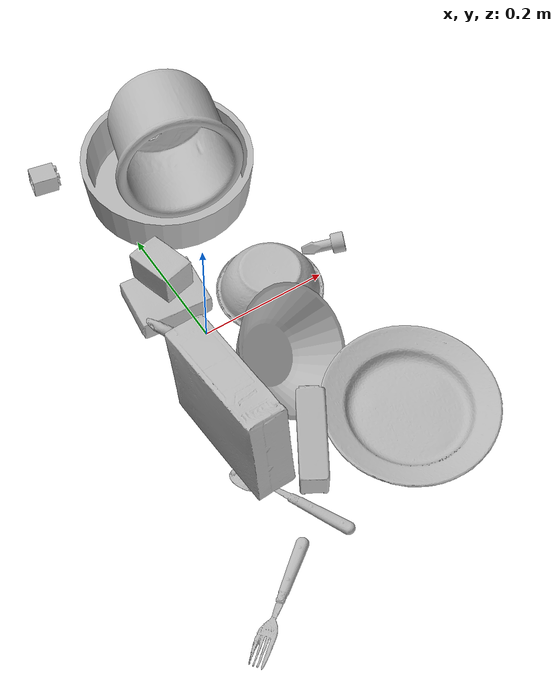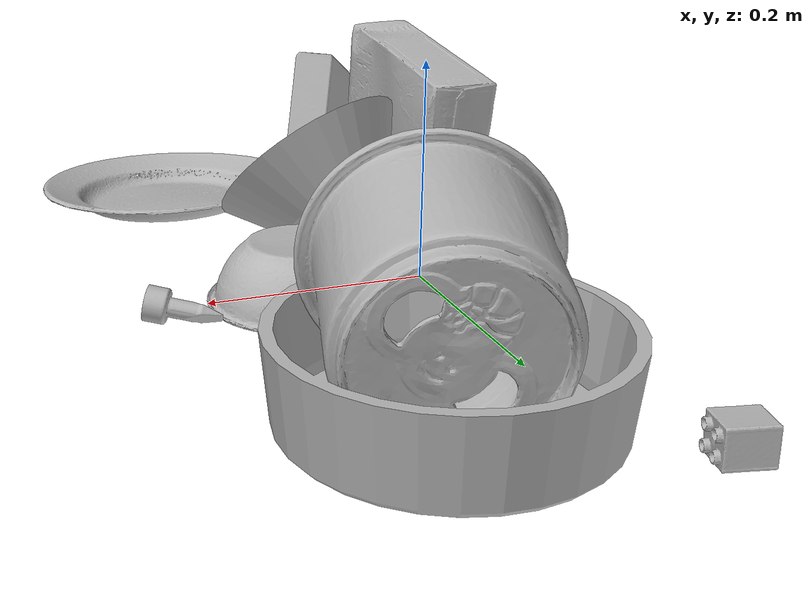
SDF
<sdf version="1.4">
  <world name="default">
    <light name="light1" type="point">
      <pose>0 0 1 0 0 0</pose>
      <diffuse>3 3 3 1</diffuse>
      <specular>3 3 3 1</specular>
    </light>
    <light name="light2" type="point">
      <pose>0 0.5 2 0 0 0</pose>
      <diffuse>1 1 1 1</diffuse>
      <specular>1 1 1 1</specular>
    </light>
    <light name="light3" type="point">
      <pose>0 0.5 2 0 0 0</pose>
      <diffuse>3 3 3 1</diffuse>
      <specular>3 3 3 1</specular>
    </light>
    <scene>
      <ambient>0.7 0.7 0.7</ambient>
    </scene>
    <model name="plate1">
      <link name="link_plate1">
        <collision name="default">
          <geometry>
            <mesh>
              <uri>model://pan_tefal/collision_meshes/collision.obj</uri>
              <scale>1.0 1.0 1.0</scale>
            </mesh>
          </geometry>
          <surface>
            <friction>
              <ode>
                <mu>0.5</mu>
                <mu2>0.5</mu2>
              </ode>
            </friction>
          <contact>
        <ode>
            <max_vel>0</max_vel>
            <min_depth>0.0001</min_depth>
            <kp>1e8</kp>
        </ode>
    </contact></surface>
        </collision>
        <visual name="default">
          <geometry>
            <mesh>
              <uri>model://pan_tefal/visual_meshes/visual.dae</uri>
              <scale>1.0 1.0 1.0</scale>
            </mesh>
          </geometry>
        </visual>
        <inertial>
          <mass>0.7050602436065674</mass>
          <pose>-0.00018002082651946694 3.279098018538207e-05 -0.008514933288097382 0.0008190340203057913 -0.0003301288692481796 -0.3318720847028622</pose>
          <inertia>
            <ixx>0.0048669963</ixx>
            <iyy>0.0048983735</iyy>
            <izz>0.008959204</izz>
            <ixy>0</ixy>
            <ixz>0</ixz>
            <iyz>0</iyz>
          </inertia>
        </inertial>
      </link>
      <pose>0.09546010196208954 0.2664937674999237 0.03805001080036163 5.532328078269189e-07 4.3541751470700805e-08 0.14674074907955206</pose>
    </model>
    <model name="plate2">
      <link name="link_plate2">
        <collision name="default">
          <geometry>
            <mesh>
              <uri>model://plate/collision_meshes/collision.obj</uri>
              <scale>1.0 1.0 1.0</scale>
            </mesh>
          </geometry>
          <surface>
            <friction>
              <ode>
                <mu>0.5</mu>
                <mu2>0.5</mu2>
              </ode>
            </friction>
          <contact>
        <ode>
            <max_vel>0</max_vel>
            <min_depth>0.0001</min_depth>
            <kp>1e8</kp>
        </ode>
    </contact></surface>
        </collision>
        <visual name="default">
          <geometry>
            <mesh>
              <uri>model://plate/visual_meshes/visual.dae</uri>
              <scale>1.0 1.0 1.0</scale>
            </mesh>
          </geometry>
        </visual>
        <inertial>
          <mass>0.2442774623632431</mass>
          <pose>-0.0006044568726792932 0.0002782584633678198 -0.0010561984963715076 0.0022187778178748897 -0.0032254919076997847 0.45261061169843664</pose>
          <inertia>
            <ixx>0.0011427345</ixx>
            <iyy>0.001131805</iyy>
            <izz>0.002235018</izz>
            <ixy>0</ixy>
            <ixz>0</ixz>
            <iyz>0</iyz>
          </inertia>
        </inertial>
      </link>
      <pose>0.17099669575691223 -0.2741580605506897 0.018683962523937225 -0.055264099445049966 -0.032150278747912424 2.666944582054992</pose>
    </model>
    <model name="bowl1">
      <link name="link_bowl1">
        <collision name="default">
          <geometry>
            <mesh>
              <uri>model://bowl_a/collision_meshes/collision.obj</uri>
              <scale>1.0 1.0 1.0</scale>
            </mesh>
          </geometry>
          <surface>
            <friction>
              <ode>
                <mu>0.5</mu>
                <mu2>0.5</mu2>
              </ode>
            </friction>
          <contact>
        <ode>
            <max_vel>0</max_vel>
            <min_depth>0.0001</min_depth>
            <kp>1e8</kp>
        </ode>
    </contact></surface>
        </collision>
        <visual name="default">
          <geometry>
            <mesh>
              <uri>model://bowl_a/visual_meshes/visual.dae</uri>
              <scale>1.0 1.0 1.0</scale>
            </mesh>
          </geometry>
        </visual>
        <inertial>
          <mass>0.4025156497955322</mass>
          <pose>0.00027867371682077646 4.731032458948903e-05 -0.0013765298062935472 -0.00098054011869292 -0.0010938175729232503 -0.19123339485915475</pose>
          <inertia>
            <ixx>0.0011459808</ixx>
            <iyy>0.0011530165</iyy>
            <izz>0.0020381706</izz>
            <ixy>0</ixy>
            <ixz>0</ixz>
            <iyz>0</iyz>
          </inertia>
        </inertial>
      </link>
      <pose>0.050290580838918686 -0.11978363990783691 0.06067845597863197 -0.060490987311300454 -0.7853404935523579 2.1624182362864333</pose>
    </model>
    <model name="bowl2">
      <link name="link_bowl2">
        <collision name="default">
          <geometry>
            <mesh>
              <uri>model://bowl/collision_meshes/collision.obj</uri>
              <scale>1.0 1.0 1.0</scale>
            </mesh>
          </geometry>
          <surface>
            <friction>
              <ode>
                <mu>0.5</mu>
                <mu2>0.5</mu2>
              </ode>
            </friction>
          <contact>
        <ode>
            <max_vel>0</max_vel>
            <min_depth>0.0001</min_depth>
            <kp>1e8</kp>
        </ode>
    </contact></surface>
        </collision>
        <visual name="default">
          <geometry>
            <mesh>
              <uri>model://bowl/visual_meshes/visual.dae</uri>
              <scale>1.0 1.0 1.0</scale>
            </mesh>
          </geometry>
        </visual>
        <inertial>
          <mass>0.04694162309169769</mass>
          <pose>0.00020445318659767509 -0.001030211104080081 -0.0008042642730288208 -0.01576400215318024 0.014546874726031786 0.7140460761636136</pose>
          <inertia>
            <ixx>0.0001078286</ixx>
            <iyy>0.000105419305</iyy>
            <izz>0.00018140484</izz>
            <ixy>0</ixy>
            <ixz>0</ixz>
            <iyz>0</iyz>
          </inertia>
        </inertial>
      </link>
      <pose>0.12152186036109924 0.01669551245868206 0.027247369289398193 -3.1327239252023054 0.0006754744522544184 0.032340837830588796</pose>
    </model>
    <model name="silverware1">
      <link name="link_silverware1">
        <collision name="default">
          <geometry>
            <mesh>
              <uri>model://spoon/collision_meshes/collision.obj</uri>
              <scale>1.0 1.0 1.0</scale>
            </mesh>
          </geometry>
          <surface>
            <friction>
              <ode>
                <mu>0.5</mu>
                <mu2>0.5</mu2>
              </ode>
            </friction>
          <contact>
        <ode>
            <max_vel>0</max_vel>
            <min_depth>0.0001</min_depth>
            <kp>1e8</kp>
        </ode>
    </contact></surface>
        </collision>
        <visual name="default">
          <geometry>
            <mesh>
              <uri>model://spoon/visual_meshes/visual.dae</uri>
              <scale>1.0 1.0 1.0</scale>
            </mesh>
          </geometry>
        </visual>
        <inertial>
          <mass>0.03710600733757019</mass>
          <pose>-0.005526318680495024 -0.0016034168656915426 -0.0007271650829352438 0.03521602429168162 -0.03906583039209626 0.006150612964611125</pose>
          <inertia>
            <ixx>2.0638956e-06</ixx>
            <iyy>0.00014118708</iyy>
            <izz>0.00014220492</izz>
            <ixy>0</ixy>
            <ixz>0</ixz>
            <iyz>0</iyz>
          </inertia>
        </inertial>
      </link>
      <pose>-0.04746950790286064 -0.3008335530757904 0.010066403076052666 3.0899154858055273 -0.06258267236730944 2.059521734589288</pose>
    </model>
    <model name="box1">
      <link name="link_box1">
        <collision name="default">
          <geometry>
            <mesh>
              <uri>model://cracker_box/collision_meshes/collision.obj</uri>
              <scale>1.0 1.0 1.0</scale>
            </mesh>
          </geometry>
          <surface>
            <friction>
              <ode>
                <mu>0.5</mu>
                <mu2>0.5</mu2>
              </ode>
            </friction>
          <contact>
        <ode>
            <max_vel>0</max_vel>
            <min_depth>0.0001</min_depth>
            <kp>1e8</kp>
        </ode>
    </contact></surface>
        </collision>
        <visual name="default">
          <geometry>
            <mesh>
              <uri>model://cracker_box/visual_meshes/visual.dae</uri>
              <scale>1.0 1.0 1.0</scale>
            </mesh>
          </geometry>
        </visual>
        <inertial>
          <mass>2.252173662185669</mass>
          <pose>0.0009464137838222086 0.0002543425071053207 -0.0017029535956680775 -0.000316207513865998 -0.011106489600465836 0.0025467954670329632</pose>
          <inertia>
            <ixx>0.0057285246</ixx>
            <iyy>0.00945892</iyy>
            <izz>0.013498746</izz>
            <ixy>0</ixy>
            <ixz>0</ixz>
            <iyz>0</iyz>
          </inertia>
        </inertial>
      </link>
      <pose>-0.06448300182819366 -0.17376761138439178 0.09324037283658981 1.547029968723059 0.12550143178527048 1.5998345817528954</pose>
    </model>
    <model name="box2">
      <link name="link_box2">
        <collision name="default">
          <geometry>
            <mesh>
              <uri>model://pudding_box/collision_meshes/collision.obj</uri>
              <scale>1.0 1.0 1.0</scale>
            </mesh>
          </geometry>
          <surface>
            <friction>
              <ode>
                <mu>0.5</mu>
                <mu2>0.5</mu2>
              </ode>
            </friction>
          <contact>
        <ode>
            <max_vel>0</max_vel>
            <min_depth>0.0001</min_depth>
            <kp>1e8</kp>
        </ode>
    </contact></surface>
        </collision>
        <visual name="default">
          <geometry>
            <mesh>
              <uri>model://pudding_box/visual_meshes/visual.dae</uri>
              <scale>1.0 1.0 1.0</scale>
            </mesh>
          </geometry>
        </visual>
        <inertial>
          <mass>0.38795164227485657</mass>
          <pose>0.0004894821904599667 0.0008067885646596551 -0.0005188827635720372 0.005213102258195884 -0.006603798723254801 0.020079825158131615</pose>
          <inertia>
            <ixx>0.00043855933</ixx>
            <iyy>0.00029506587</iyy>
            <izz>0.0006476475</izz>
            <ixy>0</ixy>
            <ixz>0</ixz>
            <iyz>0</iyz>
          </inertia>
        </inertial>
      </link>
      <pose>-0.022429486736655235 0.07685506343841553 0.019725799560546875 0.02234516654211678 -0.0113957176035735 -1.6889415915950985</pose>
    </model>
    <model name="cup1">
      <link name="link_cup1">
        <collision name="default">
          <geometry>
            <mesh>
              <uri>model://i_cups/collision_meshes/collision.obj</uri>
              <scale>2.0 2.0 2.0</scale>
            </mesh>
          </geometry>
          <surface>
            <friction>
              <ode>
                <mu>0.5</mu>
                <mu2>0.5</mu2>
              </ode>
            </friction>
          <contact>
        <ode>
            <max_vel>0</max_vel>
            <min_depth>0.0001</min_depth>
            <kp>1e8</kp>
        </ode>
    </contact></surface>
        </collision>
        <visual name="default">
          <geometry>
            <mesh>
              <uri>model://i_cups/visual_meshes/visual.dae</uri>
              <scale>2.0 2.0 2.0</scale>
            </mesh>
          </geometry>
        </visual>
        <inertial>
          <mass>0.8781275153160095</mass>
          <pose>0.00022480404004454613 0.0003359464171808213 -0.0017158013070002198 -0.028983801808433914 -0.03987279960401974 -0.34589629987983705</pose>
          <inertia>
            <ixx>0.004863122</ixx>
            <iyy>0.004905971</iyy>
            <izz>0.005435325</izz>
            <ixy>0</ixy>
            <ixz>0</ixz>
            <iyz>0</iyz>
          </inertia>
        </inertial>
      </link>
      <pose>0.10796836018562317 0.2788730561733246 0.09747462719678879 -1.4165086879955693 0.5648367691601976 2.935915790100763</pose>
    </model>
    <model name="silverware2">
      <link name="link_silverware2">
        <collision name="default">
          <geometry>
            <mesh>
              <uri>model://fork/collision_meshes/collision.obj</uri>
              <scale>1.0 1.0 1.0</scale>
            </mesh>
          </geometry>
          <surface>
            <friction>
              <ode>
                <mu>0.5</mu>
                <mu2>0.5</mu2>
              </ode>
            </friction>
          <contact>
        <ode>
            <max_vel>0</max_vel>
            <min_depth>0.0001</min_depth>
            <kp>1e8</kp>
        </ode>
    </contact></surface>
        </collision>
        <visual name="default">
          <geometry>
            <mesh>
              <uri>model://fork/visual_meshes/visual.dae</uri>
              <scale>1.0 1.0 1.0</scale>
            </mesh>
          </geometry>
        </visual>
        <inertial>
          <mass>0.027322283014655113</mass>
          <pose>-0.02957003377377987 0.0004658822435885668 0.0003218860656488687 -0.013551502868568713 -0.01097783467120204 0.01445389601768567</pose>
          <inertia>
            <ixx>9.578007e-07</ixx>
            <iyy>7.133063e-05</iyy>
            <izz>7.175903e-05</izz>
            <ixy>0</ixy>
            <ixz>0</ixz>
            <iyz>0</iyz>
          </inertia>
        </inertial>
      </link>
      <pose>-0.14493761956691742 -0.42229846119880676 0.007446615025401115 -3.06349613107129 0.002835914376244022 -2.485634642715646</pose>
    </model>
    <model name="silverware3">
      <link name="link_silverware3">
        <collision name="default">
          <geometry>
            <mesh>
              <uri>model://knife/collision_meshes/collision.obj</uri>
              <scale>1.0 1.0 1.0</scale>
            </mesh>
          </geometry>
          <surface>
            <friction>
              <ode>
                <mu>0.5</mu>
                <mu2>0.5</mu2>
              </ode>
            </friction>
          <contact>
        <ode>
            <max_vel>0</max_vel>
            <min_depth>0.0001</min_depth>
            <kp>1e8</kp>
        </ode>
    </contact></surface>
        </collision>
        <visual name="default">
          <geometry>
            <mesh>
              <uri>model://knife/visual_meshes/visual.dae</uri>
              <scale>1.0 1.0 1.0</scale>
            </mesh>
          </geometry>
        </visual>
        <inertial>
          <mass>0.036400385200977325</mass>
          <pose>-0.02378525584936142 0.0015275126788765192 5.0620175898075104e-05 0.07305876248658423 0.017248417790611748 -0.007409819472147862</pose>
          <inertia>
            <ixx>1.0331904e-06</ixx>
            <iyy>0.00013984439</iyy>
            <izz>0.00014017712</izz>
            <ixy>0</ixy>
            <ixz>0</ixz>
            <iyz>0</iyz>
          </inertia>
        </inertial>
      </link>
      <pose>-0.014645538292825222 -0.042191293090581894 0.022866668179631233 2.889208643728844 -0.15098600419564462 2.1909278989050165</pose>
    </model>
    <model name="toy1">
      <link name="link_toy1">
        <collision name="default">
          <geometry>
            <mesh>
              <uri>model://d_lego_duplo/collision_meshes/collision.obj</uri>
              <scale>1.0 1.0 1.0</scale>
            </mesh>
          </geometry>
          <surface>
            <friction>
              <ode>
                <mu>0.5</mu>
                <mu2>0.5</mu2>
              </ode>
            </friction>
          <contact>
        <ode>
            <max_vel>0</max_vel>
            <min_depth>0.0001</min_depth>
            <kp>1e8</kp>
        </ode>
    </contact></surface>
        </collision>
        <visual name="default">
          <geometry>
            <mesh>
              <uri>model://d_lego_duplo/visual_meshes/visual.dae</uri>
              <scale>1.0 1.0 1.0</scale>
            </mesh>
          </geometry>
        </visual>
        <inertial>
          <mass>0.060466669499874115</mass>
          <pose>0.002830563113093376 0.00016366162162739784 0.0008589806384406984 0.08010949306805684 -0.3835523000845375 0.0010296676643477064</pose>
          <inertia>
            <ixx>1.1705457e-05</ixx>
            <iyy>1.6613216e-05</iyy>
            <izz>1.6021117e-05</izz>
            <ixy>0</ixy>
            <ixz>0</ixz>
            <iyz>0</iyz>
          </inertia>
        </inertial>
      </link>
      <pose>-0.04946957901120186 -0.04551565647125244 0.021636106073856354 3.1413272174467997 -0.04103915585775152 -0.6808806499313594</pose>
    </model>
    <model name="toy2">
      <link name="link_toy2">
        <collision name="default">
          <geometry>
            <mesh>
              <uri>model://b_lego_duplo/collision_meshes/collision.obj</uri>
              <scale>1.0 1.0 1.0</scale>
            </mesh>
          </geometry>
          <surface>
            <friction>
              <ode>
                <mu>0.5</mu>
                <mu2>0.5</mu2>
              </ode>
            </friction>
          <contact>
        <ode>
            <max_vel>0</max_vel>
            <min_depth>0.0001</min_depth>
            <kp>1e8</kp>
        </ode>
    </contact></surface>
        </collision>
        <visual name="default">
          <geometry>
            <mesh>
              <uri>model://b_lego_duplo/visual_meshes/visual.dae</uri>
              <scale>1.0 1.0 1.0</scale>
            </mesh>
          </geometry>
        </visual>
        <inertial>
          <mass>0.030077241361141205</mass>
          <pose>-0.00011053079651901498 -9.15232340048533e-06 0.0019294286612421274 -0.037494862621914114 -0.026354003688684128 0.4518993950044185</pose>
          <inertia>
            <ixx>6.155532e-06</ixx>
            <iyy>6.196912e-06</iyy>
            <izz>5.4843786e-06</izz>
            <ixy>0</ixy>
            <ixz>0</ixz>
            <iyz>0</iyz>
          </inertia>
        </inertial>
      </link>
      <pose>-0.0638495609164238 0.3737044334411621 0.01612115651369095 1.5723689509782155 -0.012007630423678974 1.3673843458466737</pose>
    </model>
    <model name="toy3">
      <link name="link_toy3">
        <collision name="default">
          <geometry>
            <mesh>
              <uri>model://nine_hole_peg_test/collision_meshes/collision.obj</uri>
              <scale>1.0 1.0 1.0</scale>
            </mesh>
          </geometry>
          <surface>
            <friction>
              <ode>
                <mu>0.5</mu>
                <mu2>0.5</mu2>
              </ode>
            </friction>
          <contact>
        <ode>
            <max_vel>0</max_vel>
            <min_depth>0.0001</min_depth>
            <kp>1e8</kp>
        </ode>
    </contact></surface>
        </collision>
        <visual name="default">
          <geometry>
            <mesh>
              <uri>model://nine_hole_peg_test/visual_meshes/visual.dae</uri>
              <scale>1.0 1.0 1.0</scale>
            </mesh>
          </geometry>
        </visual>
        <inertial>
          <mass>0.9411391019821167</mass>
          <pose>-0.0046173869632184505 -0.009647615253925323 2.646069333422929e-05 -0.0014666795036135398 0.0007194176186147546 -0.6342417663820423</pose>
          <inertia>
            <ixx>0.0014716258</ixx>
            <iyy>0.0013740414</iyy>
            <izz>0.0025787223</izz>
            <ixy>0</ixy>
            <ixz>0</ixz>
            <iyz>0</iyz>
          </inertia>
        </inertial>
      </link>
      <pose>0.007114258594810963 -0.26602432131767273 0.08002062141895294 1.4784687348422394 1.2024912426292702 0.9460768520764007</pose>
    </model>
    <model name="toy4">
      <link name="link_toy4">
        <collision name="default">
          <geometry>
            <mesh>
              <uri>model://foam_brick/collision_meshes/collision.obj</uri>
              <scale>1.0 1.0 1.0</scale>
            </mesh>
          </geometry>
          <surface>
            <friction>
              <ode>
                <mu>0.5</mu>
                <mu2>0.5</mu2>
              </ode>
            </friction>
          <contact>
        <ode>
            <max_vel>0</max_vel>
            <min_depth>0.0001</min_depth>
            <kp>1e8</kp>
        </ode>
    </contact></surface>
        </collision>
        <visual name="default">
          <geometry>
            <mesh>
              <uri>model://foam_brick/visual_meshes/visual.dae</uri>
              <scale>1.0 1.0 1.0</scale>
            </mesh>
          </geometry>
        </visual>
        <inertial>
          <mass>0.1527709662914276</mass>
          <pose>-0.00025224717683158815 0.0003458428254816681 -0.00025321016437374055 -0.29402015796081304 0.017274438268763303 -0.0007449889855682301</pose>
          <inertia>
            <ixx>6.673321e-05</ixx>
            <iyy>0.00010654301</iyy>
            <izz>0.00010789704</izz>
            <ixy>0</ixy>
            <ixz>0</ixz>
            <iyz>0</iyz>
          </inertia>
        </inertial>
      </link>
      <pose>-0.01624470017850399 0.09614456444978714 0.06363047659397125 1.5662673831704297 0.04734869821083261 1.8241760700015643</pose>
    </model>
    <model name="toy5">
      <link name="link_toy5">
        <collision name="default">
          <geometry>
            <mesh>
              <uri>model://e_toy_airplane/collision_meshes/collision.obj</uri>
              <scale>1.0 1.0 1.0</scale>
            </mesh>
          </geometry>
          <surface>
            <friction>
              <ode>
                <mu>0.5</mu>
                <mu2>0.5</mu2>
              </ode>
            </friction>
          <contact>
        <ode>
            <max_vel>0</max_vel>
            <min_depth>0.0001</min_depth>
            <kp>1e8</kp>
        </ode>
    </contact></surface>
        </collision>
        <visual name="default">
          <geometry>
            <mesh>
              <uri>model://e_toy_airplane/visual_meshes/visual.dae</uri>
              <scale>1.0 1.0 1.0</scale>
            </mesh>
          </geometry>
        </visual>
        <inertial>
          <mass>0.01976589486002922</mass>
          <pose>0.00011740453192032874 -2.2483010980067775e-05 -0.011187207885086536 0.005518504435964777 0.009228288570086122 0.15041432989491213</pose>
          <inertia>
            <ixx>6.0327766e-06</ixx>
            <iyy>5.971064e-06</iyy>
            <izz>1.813087e-06</izz>
            <ixy>0</ixy>
            <ixz>0</ixz>
            <iyz>0</iyz>
          </inertia>
        </inertial>
      </link>
      <pose>0.2287246286869049 0.0351673923432827 0.012002103962004185 1.781956964010324 -0.5838920383803838 -2.1190829936511504</pose>
    </model>
  <physics type="ode">
      <max_contacts>50</max_contacts>
      <ode>
        <solver>
          <type>quick</type>
          <iters>75</iters>
        </solver>
        <constraints>
          <contact_max_correcting_vel>0</contact_max_correcting_vel>
          <contact_surface_layer>0</contact_surface_layer>
        </constraints>
      </ode>
    </physics></world>
</sdf>
